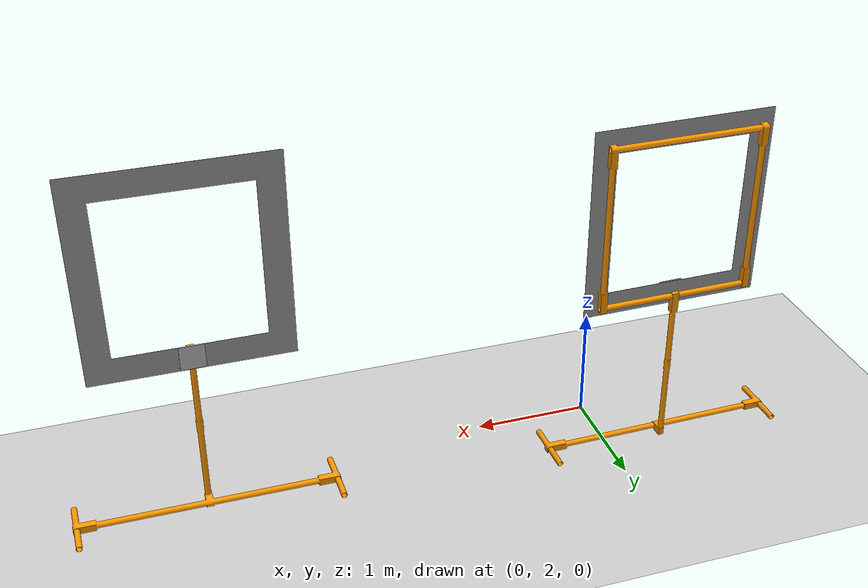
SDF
<sdf version="1.7">
 <world name="default">
  <light name="sun" type="directional">
   <pose>0 0 10 0 -0 0</pose>
   <diffuse>0.8 0.8 0.8 1</diffuse>
   <specular>0.2 0.2 0.2 1</specular>
   <attenuation>
    <range>1000</range>
    <constant>0.9</constant>
    <linear>0.01</linear>
    <quadratic>0.001</quadratic>
   </attenuation>
   <direction>-0.5 0.1 -0.9</direction>
   <spot><inner_angle>0</inner_angle><outer_angle>0</outer_angle><falloff>0</falloff></spot>
  </light>
  <model name="ground_plane">
   <static>1</static>
   <link name="link">
    <collision name="collision">
     <geometry><plane><normal>0 0 1</normal><size>100 100</size></plane></geometry>
     <surface>
      <contact><collide_bitmask>65535</collide_bitmask></contact>
      <friction><ode><mu>100</mu><mu2>50</mu2></ode></friction>
     </surface>
    </collision>
    <visual name="visual">
     <cast_shadows>0</cast_shadows>
     <geometry><plane><normal>0 0 1</normal><size>100 100</size></plane></geometry>
     <material>
      <script><uri>file://media/materials/scripts/gazebo.material</uri><name>Gazebo/Grey</name></script>
     </material>
    </visual>
   </link>
  </model>
  <gravity>0 0 -9.8</gravity>
  <magnetic_field>6e-06 2.3e-05 -4.2e-05</magnetic_field>
  <atmosphere type="adiabatic"/>
  <physics name="default_physics" default="0" type="ode">
   <max_step_size>0.001</max_step_size>
   <real_time_factor>1</real_time_factor>
   <real_time_update_rate>1000</real_time_update_rate>
  </physics>
  <scene><ambient>0.4 0.4 0.4 1</ambient><background>0.7 0.7 0.7 1</background><shadows>1</shadows></scene>
  <audio><device>default</device></audio>
  <spherical_coordinates>
   <surface_model>EARTH_WGS84</surface_model>
   <latitude_deg>0</latitude_deg>
   <longitude_deg>0</longitude_deg>
   <elevation>0</elevation>
   <heading_deg>0</heading_deg>
  </spherical_coordinates>
  <model name="Aruco_gate_1">
   <link name="aruco">
    <pose>0.135 0 1.45017 0 -0 1.6</pose>
    <collision name="collision"><geometry><box><size>0.2 0.01 0.2</size></box></geometry></collision>
    <visual name="visual">
     <pose>0 0 0 0 1.57 0</pose>
     <geometry><box><size>0.2 0.01 0.2</size></box></geometry>
     <material>
      <script>
       <uri>model://aruco/materials/scripts</uri>
       <uri>model://aruco/materials/textures</uri>
       <name>aruco_1/Diffuse</name>
      </script>
     </material>
    </visual>
   </link>
   <link name="link_0">
    <pose>-0.126667 1.11221 0.000173 1.57 -0 0</pose>
    <inertial>
     <mass>1</mass>
     <inertia>
      <ixx>0.166667</ixx>
      <ixy>0</ixy>
      <ixz>0</ixz>
      <iyy>0.166667</iyy>
      <iyz>0</iyz>
      <izz>0.166667</izz>
     </inertia>
    </inertial>
    <visual name="visual">
     <geometry><mesh><uri>model://aruco_gate_1/meshes/base.stl</uri><scale>1 1 1</scale></mesh></geometry>
     <material>
      <lighting>1</lighting>
      <script><uri>file://media/materials/scripts/gazebo.material</uri><name>Gazebo/Grey</name></script>
      <ambient>1 0.6 0 1</ambient>
      <diffuse>1 0.6 0 1</diffuse>
      <specular>0.01 0.01 0.01 1</specular>
      <emissive>0 0 0 1</emissive>
      <shader type="vertex"><normal_map>__default__</normal_map></shader>
     </material>
    </visual>
    <collision name="collision">
     <geometry><mesh><uri>model://aruco_gate_1/meshes/base.stl</uri></mesh></geometry>
     <surface>
      <friction>
       <ode><mu>1</mu><mu2>1</mu2><fdir1>0 0 0</fdir1><slip1>0</slip1><slip2>0</slip2></ode>
       <torsional>
        <coefficient>1</coefficient>
        <patch_radius>0</patch_radius>
        <surface_radius>0</surface_radius>
        <use_patch_radius>1</use_patch_radius>
        <ode><slip>0</slip></ode>
       </torsional>
      </friction>
      <bounce><restitution_coefficient>0</restitution_coefficient><threshold>1e+06</threshold></bounce>
      <contact>
       <collide_without_contact>0</collide_without_contact>
       <collide_without_contact_bitmask>1</collide_without_contact_bitmask>
       <collide_bitmask>1</collide_bitmask>
       <ode>
        <soft_cfm>0</soft_cfm>
        <soft_erp>0.2</soft_erp>
        <kp>1e+13</kp>
        <kd>1</kd>
        <max_vel>0.01</max_vel>
        <min_depth>0</min_depth>
       </ode>
       <bullet>
        <split_impulse>1</split_impulse>
        <split_impulse_penetration_threshold>-0.01</split_impulse_penetration_threshold>
        <soft_cfm>0</soft_cfm>
        <soft_erp>0.2</soft_erp>
        <kp>1e+13</kp>
        <kd>1</kd>
       </bullet>
      </contact>
     </surface>
    </collision>
   </link>
   <link name="link_1">
    <pose>0.003333 -0.7 1.40017 0 -0 0</pose>
    <inertial>
     <mass>1</mass>
     <inertia>
      <ixx>0.166667</ixx>
      <ixy>0</ixy>
      <ixz>0</ixz>
      <iyy>0.166667</iyy>
      <iyz>0</iyz>
      <izz>0.166667</izz>
     </inertia>
    </inertial>
    <visual name="visual">
     <geometry><mesh><uri>model://aruco_gate_1/meshes/hoop.stl</uri><scale>1 1 1</scale></mesh></geometry>
     <material>
      <lighting>1</lighting>
      <script><uri>file://media/materials/scripts/gazebo.material</uri><name>Gazebo/Grey</name></script>
      <ambient>1 0.6 0 1</ambient>
      <diffuse>1 0.6 0 1</diffuse>
      <specular>0.01 0.01 0.01 1</specular>
      <emissive>0 0 0 1</emissive>
      <shader type="vertex"><normal_map>__default__</normal_map></shader>
     </material>
    </visual>
    <collision name="collision">
     <geometry><mesh><uri>model://aruco_gate_1/meshes/hoop.stl</uri></mesh></geometry>
     <surface>
      <friction>
       <ode><mu>1</mu><mu2>1</mu2><fdir1>0 0 0</fdir1><slip1>0</slip1><slip2>0</slip2></ode>
       <torsional>
        <coefficient>1</coefficient>
        <patch_radius>0</patch_radius>
        <surface_radius>0</surface_radius>
        <use_patch_radius>1</use_patch_radius>
        <ode><slip>0</slip></ode>
       </torsional>
      </friction>
      <bounce><restitution_coefficient>0</restitution_coefficient><threshold>1e+06</threshold></bounce>
      <contact>
       <collide_without_contact>0</collide_without_contact>
       <collide_without_contact_bitmask>1</collide_without_contact_bitmask>
       <collide_bitmask>1</collide_bitmask>
       <ode>
        <soft_cfm>0</soft_cfm>
        <soft_erp>0.2</soft_erp>
        <kp>1e+13</kp>
        <kd>1</kd>
        <max_vel>0.01</max_vel>
        <min_depth>0</min_depth>
       </ode>
       <bullet>
        <split_impulse>1</split_impulse>
        <split_impulse_penetration_threshold>-0.01</split_impulse_penetration_threshold>
        <soft_cfm>0</soft_cfm>
        <soft_erp>0.2</soft_erp>
        <kp>1e+13</kp>
        <kd>1</kd>
       </bullet>
      </contact>
     </surface>
    </collision>
   </link>
   <link name="link_2">
    <pose>0.123333 -0.797794 3.62017 0 1.57 0</pose>
    <inertial>
     <mass>1</mass>
     <inertia>
      <ixx>0.166667</ixx>
      <ixy>0</ixy>
      <ixz>0</ixz>
      <iyy>0.166667</iyy>
      <iyz>0</iyz>
      <izz>0.166667</izz>
     </inertia>
    </inertial>
    <visual name="visual">
     <geometry><mesh><uri>model://aruco_gate_1/meshes/background.stl</uri><scale>1 1 1</scale></mesh></geometry>
     <material>
      <lighting>1</lighting>
      <script><uri>file://media/materials/scripts/gazebo.material</uri><name>Gazebo/Grey</name></script>
      <ambient>0.9 0.9 0.9 1</ambient>
      <diffuse>0.9 0.9 0.9 1</diffuse>
      <specular>0.01 0.01 0.01 1</specular>
      <emissive>0 0 0 1</emissive>
      <shader type="vertex"><normal_map>__default__</normal_map></shader>
     </material>
    </visual>
    <collision name="collision">
     <geometry><mesh><uri>model://aruco_gate_1/meshes/background.stl</uri></mesh></geometry>
     <surface>
      <friction>
       <ode><mu>1</mu><mu2>1</mu2><fdir1>0 0 0</fdir1><slip1>0</slip1><slip2>0</slip2></ode>
       <torsional>
        <coefficient>1</coefficient>
        <patch_radius>0</patch_radius>
        <surface_radius>0</surface_radius>
        <use_patch_radius>1</use_patch_radius>
        <ode><slip>0</slip></ode>
       </torsional>
      </friction>
      <bounce><restitution_coefficient>0</restitution_coefficient><threshold>1e+06</threshold></bounce>
      <contact>
       <collide_without_contact>0</collide_without_contact>
       <collide_without_contact_bitmask>1</collide_without_contact_bitmask>
       <collide_bitmask>1</collide_bitmask>
       <ode>
        <soft_cfm>0</soft_cfm>
        <soft_erp>0.2</soft_erp>
        <kp>1e+13</kp>
        <kd>1</kd>
        <max_vel>0.01</max_vel>
        <min_depth>0</min_depth>
       </ode>
       <bullet>
        <split_impulse>1</split_impulse>
        <split_impulse_penetration_threshold>-0.01</split_impulse_penetration_threshold>
        <soft_cfm>0</soft_cfm>
        <soft_erp>0.2</soft_erp>
        <kp>1e+13</kp>
        <kd>1</kd>
       </bullet>
      </contact>
     </surface>
    </collision>
   </link>
   <static>1</static>
   <pose>-0.53214 2.62966 0 0 0 -1.5543</pose>
  </model>
  <model name="Aruco_gate_3">
   <link name="aruco">
    <pose>0.135 0 1.45017 0 -0 1.6</pose>
    <collision name="collision"><geometry><box><size>0.2 0.01 0.2</size></box></geometry></collision>
    <visual name="visual">
     <pose>0 0 0 0 1.57 0</pose>
     <geometry><box><size>0.2 0.01 0.2</size></box></geometry>
     <material>
      <script>
       <uri>model://aruco/materials/scripts</uri>
       <uri>model://aruco/materials/textures</uri>
       <name>aruco_3/Diffuse</name>
      </script>
     </material>
    </visual>
   </link>
   <link name="link_0">
    <pose>-0.126667 1.11221 0.000173 1.57 -0 0</pose>
    <inertial>
     <mass>1</mass>
     <inertia>
      <ixx>0.166667</ixx>
      <ixy>0</ixy>
      <ixz>0</ixz>
      <iyy>0.166667</iyy>
      <iyz>0</iyz>
      <izz>0.166667</izz>
     </inertia>
    </inertial>
    <visual name="visual">
     <geometry><mesh><uri>model://aruco_gate_1/meshes/base.stl</uri><scale>1 1 1</scale></mesh></geometry>
     <material>
      <lighting>1</lighting>
      <script><uri>file://media/materials/scripts/gazebo.material</uri><name>Gazebo/Grey</name></script>
      <ambient>1 0.6 0 1</ambient>
      <diffuse>1 0.6 0 1</diffuse>
      <specular>0.01 0.01 0.01 1</specular>
      <emissive>0 0 0 1</emissive>
      <shader type="vertex"><normal_map>__default__</normal_map></shader>
     </material>
    </visual>
    <collision name="collision">
     <geometry><mesh><uri>model://aruco_gate_1/meshes/base.stl</uri></mesh></geometry>
     <surface>
      <friction>
       <ode><mu>1</mu><mu2>1</mu2><fdir1>0 0 0</fdir1><slip1>0</slip1><slip2>0</slip2></ode>
       <torsional>
        <coefficient>1</coefficient>
        <patch_radius>0</patch_radius>
        <surface_radius>0</surface_radius>
        <use_patch_radius>1</use_patch_radius>
        <ode><slip>0</slip></ode>
       </torsional>
      </friction>
      <bounce><restitution_coefficient>0</restitution_coefficient><threshold>1e+06</threshold></bounce>
      <contact>
       <collide_without_contact>0</collide_without_contact>
       <collide_without_contact_bitmask>1</collide_without_contact_bitmask>
       <collide_bitmask>1</collide_bitmask>
       <ode>
        <soft_cfm>0</soft_cfm>
        <soft_erp>0.2</soft_erp>
        <kp>1e+13</kp>
        <kd>1</kd>
        <max_vel>0.01</max_vel>
        <min_depth>0</min_depth>
       </ode>
       <bullet>
        <split_impulse>1</split_impulse>
        <split_impulse_penetration_threshold>-0.01</split_impulse_penetration_threshold>
        <soft_cfm>0</soft_cfm>
        <soft_erp>0.2</soft_erp>
        <kp>1e+13</kp>
        <kd>1</kd>
       </bullet>
      </contact>
     </surface>
    </collision>
   </link>
   <link name="link_1">
    <pose>0.003333 -0.7 1.40017 0 -0 0</pose>
    <inertial>
     <mass>1</mass>
     <inertia>
      <ixx>0.166667</ixx>
      <ixy>0</ixy>
      <ixz>0</ixz>
      <iyy>0.166667</iyy>
      <iyz>0</iyz>
      <izz>0.166667</izz>
     </inertia>
    </inertial>
    <visual name="visual">
     <geometry><mesh><uri>model://aruco_gate_1/meshes/hoop.stl</uri><scale>1 1 1</scale></mesh></geometry>
     <material>
      <lighting>1</lighting>
      <script><uri>file://media/materials/scripts/gazebo.material</uri><name>Gazebo/Grey</name></script>
      <ambient>1 0.6 0 1</ambient>
      <diffuse>1 0.6 0 1</diffuse>
      <specular>0.01 0.01 0.01 1</specular>
      <emissive>0 0 0 1</emissive>
      <shader type="vertex"><normal_map>__default__</normal_map></shader>
     </material>
    </visual>
    <collision name="collision">
     <geometry><mesh><uri>model://aruco_gate_1/meshes/hoop.stl</uri></mesh></geometry>
     <surface>
      <friction>
       <ode><mu>1</mu><mu2>1</mu2><fdir1>0 0 0</fdir1><slip1>0</slip1><slip2>0</slip2></ode>
       <torsional>
        <coefficient>1</coefficient>
        <patch_radius>0</patch_radius>
        <surface_radius>0</surface_radius>
        <use_patch_radius>1</use_patch_radius>
        <ode><slip>0</slip></ode>
       </torsional>
      </friction>
      <bounce><restitution_coefficient>0</restitution_coefficient><threshold>1e+06</threshold></bounce>
      <contact>
       <collide_without_contact>0</collide_without_contact>
       <collide_without_contact_bitmask>1</collide_without_contact_bitmask>
       <collide_bitmask>1</collide_bitmask>
       <ode>
        <soft_cfm>0</soft_cfm>
        <soft_erp>0.2</soft_erp>
        <kp>1e+13</kp>
        <kd>1</kd>
        <max_vel>0.01</max_vel>
        <min_depth>0</min_depth>
       </ode>
       <bullet>
        <split_impulse>1</split_impulse>
        <split_impulse_penetration_threshold>-0.01</split_impulse_penetration_threshold>
        <soft_cfm>0</soft_cfm>
        <soft_erp>0.2</soft_erp>
        <kp>1e+13</kp>
        <kd>1</kd>
       </bullet>
      </contact>
     </surface>
    </collision>
   </link>
   <link name="link_2">
    <pose>0.123333 -0.797794 3.62017 0 1.57 0</pose>
    <inertial>
     <mass>1</mass>
     <inertia>
      <ixx>0.166667</ixx>
      <ixy>0</ixy>
      <ixz>0</ixz>
      <iyy>0.166667</iyy>
      <iyz>0</iyz>
      <izz>0.166667</izz>
     </inertia>
    </inertial>
    <visual name="visual">
     <geometry><mesh><uri>model://aruco_gate_1/meshes/background.stl</uri><scale>1 1 1</scale></mesh></geometry>
     <material>
      <lighting>1</lighting>
      <script><uri>file://media/materials/scripts/gazebo.material</uri><name>Gazebo/Grey</name></script>
      <ambient>0.9 0.9 0.9 1</ambient>
      <diffuse>0.9 0.9 0.9 1</diffuse>
      <specular>0.01 0.01 0.01 1</specular>
      <emissive>0 0 0 1</emissive>
      <shader type="vertex"><normal_map>__default__</normal_map></shader>
     </material>
    </visual>
    <collision name="collision">
     <geometry><mesh><uri>model://aruco_gate_1/meshes/background.stl</uri></mesh></geometry>
     <surface>
      <friction>
       <ode><mu>1</mu><mu2>1</mu2><fdir1>0 0 0</fdir1><slip1>0</slip1><slip2>0</slip2></ode>
       <torsional>
        <coefficient>1</coefficient>
        <patch_radius>0</patch_radius>
        <surface_radius>0</surface_radius>
        <use_patch_radius>1</use_patch_radius>
        <ode><slip>0</slip></ode>
       </torsional>
      </friction>
      <bounce><restitution_coefficient>0</restitution_coefficient><threshold>1e+06</threshold></bounce>
      <contact>
       <collide_without_contact>0</collide_without_contact>
       <collide_without_contact_bitmask>1</collide_without_contact_bitmask>
       <collide_bitmask>1</collide_bitmask>
       <ode>
        <soft_cfm>0</soft_cfm>
        <soft_erp>0.2</soft_erp>
        <kp>1e+13</kp>
        <kd>1</kd>
        <max_vel>0.01</max_vel>
        <min_depth>0</min_depth>
       </ode>
       <bullet>
        <split_impulse>1</split_impulse>
        <split_impulse_penetration_threshold>-0.01</split_impulse_penetration_threshold>
        <soft_cfm>0</soft_cfm>
        <soft_erp>0.2</soft_erp>
        <kp>1e+13</kp>
        <kd>1</kd>
       </bullet>
      </contact>
     </surface>
    </collision>
   </link>
   <static>1</static>
   <plugin name="gazebo_random_position_plugin" filename="librotors_gazebo_random_position_plugin.so">
    <limitX>0.75</limitX>
    <limitY>0.75</limitY>
    <limitZ>0.5</limitZ>
    <activate_roll>0</activate_roll>
   </plugin>
   <pose>3.55736 2.57143 0.297493 0 -0 1.56864</pose>
  </model>
 </world>
</sdf>
